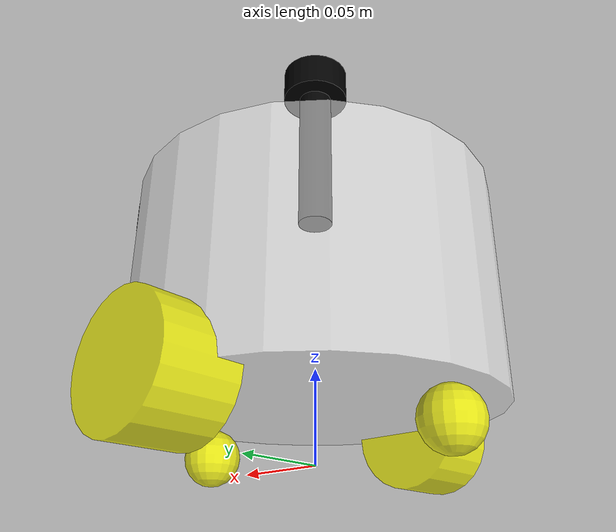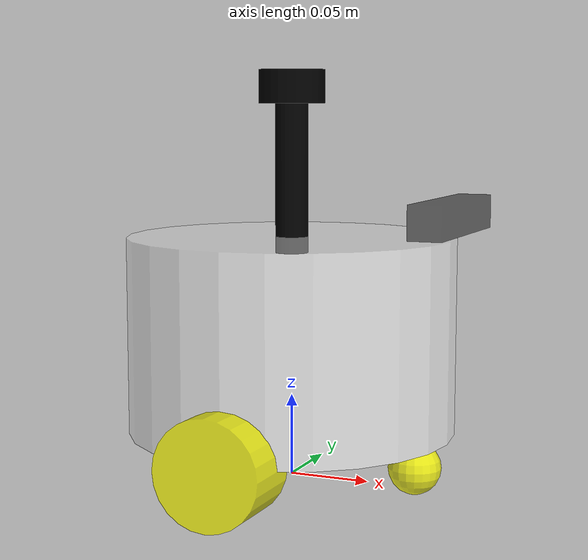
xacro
<?xml version="1.0"?>
<robot xmlns:xacro="http://www.ros.org/wiki/xacro" name="recyclebot">

<!-- Basic Part: base_link -->
<xacro:include filename="$(find robot_description)/urdf/recyclebot/base.urdf.xacro" />

<!-- Sensor -->
<xacro:include filename="$(find robot_description)/urdf/recyclebot/sensor/imu.urdf.xacro" />
<xacro:include filename="$(find robot_description)/urdf/recyclebot/sensor/camera.urdf.xacro" />
<xacro:include filename="$(find robot_description)/urdf/recyclebot/sensor/laser.urdf.xacro" />

<!-- Actuator -->
<xacro:include filename="$(find robot_description)/urdf/recyclebot/actuator/wheel.urdf.xacro" />
<xacro:include filename="$(find robot_description)/urdf/recyclebot/actuator/caster.urdf.xacro" />

<xacro:base_xacro length="0.12" radius="0.10" />
<xacro:imu_xacro xyz="0.0 0.0 0.02" />
<xacro:camera_xacro xyz="0.10 0.0 0.075" />
<xacro:laser_xacro xyz="0.0 0.0 0.10" />

<xacro:wheel_xacro wheel_name="left_wheel" xyz="0 0.10 -0.06" />
<xacro:wheel_xacro wheel_name="right_wheel" xyz="0 -0.10 -0.06" />
<xacro:caster_xacro caster_name="front_caster" xyz="0.08 0.0 -0.076" />
<xacro:caster_xacro caster_name="back_caster" xyz="-0.08 0.0 -0.076" />

</robot>

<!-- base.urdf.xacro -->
<robot xmlns:xacro="http://www.ros.org/wiki/xacro">
<xacro:include filename="$(find robot_description)/urdf/recyclebot/common_inertia.xacro"/>
    <xacro:macro name="base_xacro" params="length radius">
        <link name="base_footprint" />

        <!-- 机械人身体部分 -->
        <link name="base_link">
            <!-- 部件外观描述 -->
            <visual>
                <!-- 沿着自己几何中心的偏移和旋转量 -->
                <origin xyz="0.0 0.0 0.0" rpy="0.0 0.0 0.0"/>
                <!-- 几何形状 -->
                <geometry>
                    <!-- 圆柱体 radius 半径 0.10m -->
                    <cylinder radius="${radius}" length="${length}"/>
                </geometry>
                <!-- 材质颜色 -->
                <material name="white">
                    <color rgba="1.0 1.0 1.0 0.5"/>
                </material>
            </visual>
            <collision>
                <!-- 沿着自己几何中心的偏移和旋转量 -->
                <origin xyz="0.0 0.0 0.0" rpy="0.0 0.0 0.0"/>
                <!-- 几何形状 -->
                <geometry>
                    <!-- 圆柱体 radius 半径 0.10m -->
                    <cylinder radius="${radius}" length="${length}"/>
                </geometry>
                <!-- 材质颜色 -->
                <material name="white">
                    <color rgba="1.0 1.0 1.0 0.5"/>
                </material>
            </collision>
            <xacro:cylinder_inertia m="1.0" r="${radius}" h="${length}" />
        </link>

        <joint name="joint_name" type="fixed">
            <origin xyz="0.0 0.0 ${length/2.1 + 0.032 - 0.001}" rpy="0.0 0.0 0.0"/>
            <parent link="base_footprint"/>
            <child link="base_link"/>
        </joint>
    </xacro:macro>
</robot>

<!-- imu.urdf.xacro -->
<robot xmlns:xacro="http://www.ros.org/wiki/xacro">
<xacro:include filename="$(find robot_description)/urdf/recyclebot/common_inertia.xacro"/>
    <xacro:macro name="imu_xacro" params="xyz">
        <!-- 机械人的IMU部件，惯性测量传感器 -->
        <link name="imu_link">
            <!-- 部件外观描述 -->
            <visual>
                <!-- 沿着自己几何中心的偏移和旋转量 -->
                <origin xyz="0.0 0.0 0.0" rpy="0.0 0.0 0.0"/>
                <!-- 几何形状 -->
                <geometry>
                    <box size="0.02 0.02 0.02"/>
                </geometry>
                <!-- 材质颜色 -->
                <material name="black">
                    <color rgba="0.0 0.0 0.0 0.5"/>
                </material>
            </visual>
            <collision>
                <!-- 沿着自己几何中心的偏移和旋转量 -->
                <origin xyz="0.0 0.0 0.0" rpy="0.0 0.0 0.0"/>
                <!-- 几何形状 -->
                <geometry>
                    <box size="0.02 0.02 0.02"/>
                </geometry>
                <!-- 材质颜色 -->
                <material name="black">
                    <color rgba="0.0 0.0 0.0 0.5"/>
                </material>
            </collision>
            <xacro:box_inertia m="0.05" w="0.02" h="0.02" d="0.02" />
        </link>

        <!-- 机械人关节，用于组合机器人的部件 -->
        <joint name="imu_joint" type="fixed">
            <parent link="base_link"/>
            <child link="imu_link"/>
            <origin xyz="${xyz}" rpy="0.0 0.0 0.0"/>
        </joint>
    </xacro:macro>

</robot>

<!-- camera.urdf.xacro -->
<robot xmlns:xacro="http://www.ros.org/wiki/xacro">
<xacro:include filename="$(find robot_description)/urdf/recyclebot/common_inertia.xacro"/>
    <xacro:macro name="camera_xacro" params="xyz">
        <link name="camera_link">
            <!-- 部件外观描述 -->
            <visual>
                <!-- 沿着自己几何中心的偏移和旋转量 -->
                <origin xyz="0.0 0.0 0.0" rpy="0.0 0.0 0.0"/>
                <!-- 几何形状 -->
                <geometry>
                    <box size="0.02 0.10 0.02"/>
                </geometry>
                <!-- 材质颜色 -->
                <material name="black">
                    <color rgba="0.0 0.0 0.0 0.5"/>
                </material>
            </visual>
            <collision>
                <!-- 沿着自己几何中心的偏移和旋转量 -->
                <origin xyz="0.0 0.0 0.0" rpy="0.0 0.0 0.0"/>
                <!-- 几何形状 -->
                <geometry>
                    <box size="0.02 0.10 0.02"/>
                </geometry>
                <!-- 材质颜色 -->
                <material name="black">
                    <color rgba="0.0 0.0 0.0 0.5"/>
                </material>
            </collision>
            <xacro:box_inertia m="0.1" w="0.02" h="0.10" d="0.02" />
        </link>

        <!-- 机械人关节，用于组合机器人的部件 -->
        <joint name="camera_joint" type="fixed">
            <parent link="base_link"/>
            <child link="camera_link"/>
            <origin xyz="${xyz}" rpy="0.0 0.0 0.0"/>
        </joint>
    </xacro:macro>

</robot>

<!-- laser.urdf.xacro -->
<robot xmlns:xacro="http://www.ros.org/wiki/xacro">
<xacro:include filename="$(find robot_description)/urdf/recyclebot/common_inertia.xacro"/>
    <xacro:macro name="laser_xacro" params="xyz">
        <!-- Lidar support -->
        <link name="laser_cylinder_link">
            <!-- 部件外观描述 -->
            <visual>
                <!-- 沿着自己几何中心的偏移和旋转量 -->
                <origin xyz="0.0 0.0 0.0" rpy="0.0 0.0 0.0"/>
                <!-- 几何形状 -->
                <geometry>
                    <cylinder radius="0.01" length="0.10"/>
                </geometry>
                <!-- 材质颜色 -->
                <material name="black">
                    <color rgba="0.0 0.0 0.0 1.0"/>
                </material>
            </visual>
            <collision>
                <!-- 沿着自己几何中心的偏移和旋转量 -->
                <origin xyz="0.0 0.0 0.0" rpy="0.0 0.0 0.0"/>
                <!-- 几何形状 -->
                <geometry>
                    <cylinder radius="0.01" length="0.10"/>
                </geometry>
                <!-- 材质颜色 -->
                <material name="black">
                    <color rgba="0.0 0.0 0.0 1.0"/>
                </material>
            </collision>
            <xacro:cylinder_inertia m="0.05" r="0.01" h="0.10" />
        </link>

        <!-- Lidar -->
        <link name="laser_link">
            <!-- 部件外观描述 -->
            <visual>
                <!-- 沿着自己几何中心的偏移和旋转量 -->
                <origin xyz="0.0 0.0 0.0" rpy="0.0 0.0 0.0"/>
                <!-- 几何形状 -->
                <geometry>
                    <cylinder radius="0.02" length="0.02"/>
                </geometry>
                <!-- 材质颜色 -->
                <material name="black">
                    <color rgba="0.0 0.0 0.0 1.0"/>
                </material>
            </visual>
            <collision>
                <!-- 沿着自己几何中心的偏移和旋转量 -->
                <origin xyz="0.0 0.0 0.0" rpy="0.0 0.0 0.0"/>
                <!-- 几何形状 -->
                <geometry>
                    <cylinder radius="0.02" length="0.02"/>
                </geometry>
                <!-- 材质颜色 -->
                <material name="black">
                    <color rgba="0.0 0.0 0.0 1.0"/>
                </material>
            </collision>
            <xacro:cylinder_inertia m="0.10" r="0.02" h="0.02" />
        </link>

        <!-- 机械人关节，用于组合机器人的部件 -->
        <joint name="laser_joint" type="fixed">
            <parent link="laser_cylinder_link"/>
            <child link="laser_link"/>
            <origin xyz="0.0 0.0 0.05" rpy="0.0 0.0 0.0"/>
        </joint>

        <joint name="laser_cylinder_joint" type="fixed">
            <parent link="base_link"/>
            <child link="laser_cylinder_link"/>
            <origin xyz="${xyz}" rpy="0.0 0.0 0.0"/>
        </joint>
    </xacro:macro>

</robot>

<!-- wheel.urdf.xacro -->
<robot xmlns:xacro="http://www.ros.org/wiki/xacro">
<xacro:include filename="$(find robot_description)/urdf/recyclebot/common_inertia.xacro"/>
    <xacro:macro name="wheel_xacro" params="wheel_name xyz">
        <link name="${wheel_name}_link">
            <!-- 部件外观描述 -->
            <visual>
                <!-- 沿着自己几何中心的偏移和旋转量 -->
                <origin xyz="0.0 0.0 0.0" rpy="1.57079 0.0 0.0"/>
                <!-- 几何形状 -->
                <geometry>
                    <cylinder radius="0.032" length="0.04"/>
                </geometry>
                <!-- 材质颜色 -->
                <material name="yellow">
                    <color rgba="1.0 1.0 0.0 0.8"/>
                </material>
            </visual>
            <collision>
                <!-- 沿着自己几何中心的偏移和旋转量 -->
                <origin xyz="0.0 0.0 0.0" rpy="1.57079 0.0 0.0"/>
                <!-- 几何形状 -->
                <geometry>
                    <cylinder radius="0.032" length="0.04"/>
                </geometry>
                <!-- 材质颜色 -->
                <material name="yellow">
                    <color rgba="1.0 1.0 0.0 0.8"/>
                </material>
            </collision>
            <xacro:cylinder_inertia m="0.05" r="0.032" h="0.04" />
        </link>

        <!-- 机械人关节，用于组合机器人的部件 -->
        <joint name="${wheel_name}_joint" type="continuous">
            <parent link="base_link"/>
            <child link="${wheel_name}_link"/>
            <origin xyz="${xyz}" rpy="0.0 0.0 0.0"/>
            <axis xyz="0 1 0"/>
        </joint>
    </xacro:macro>

</robot>

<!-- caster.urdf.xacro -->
<robot xmlns:xacro="http://www.ros.org/wiki/xacro">
    <xacro:include filename="$(find robot_description)/urdf/recyclebot/common_inertia.xacro"/>
    <xacro:macro name="caster_xacro" params="caster_name xyz">
        <link name="${caster_name}_caster_link">
            <visual>
                <origin xyz="0 0 0" rpy="0 0 0" />
                <geometry>
                    <sphere radius="0.016" />
                </geometry>
                <material name="yellow">
                    <color rgba="1.0 1.0 0.0 0.8"/>
                </material>
            </visual>
            <collision>
                <origin xyz="0 0 0" rpy="0 0 0" />
                <geometry>
                    <sphere radius="0.016" />
                </geometry>
                <material name="yellow">
                    <color rgba="1.0 1.0 0.0 0.8"/>
                </material>
            </collision>
            <xacro:sphere_inertia m="0.05" r="0.016" />
        </link>
        <gazebo reference="${caster_name}_caster_link">
            <mu1 value="0.0" />
            <mu2 value="0.0" />
            <kp value="1000000000.0" />
            <kd value="1.0" />
        </gazebo>

        <joint name="${caster_name}_caster_joint" type="fixed">
            <parent link="base_link" />
            <child link="${caster_name}_caster_link" />
            <origin xyz="${xyz}" />
            <axis xyz="0 0 0" />
        </joint>

    </xacro:macro>
</robot>
